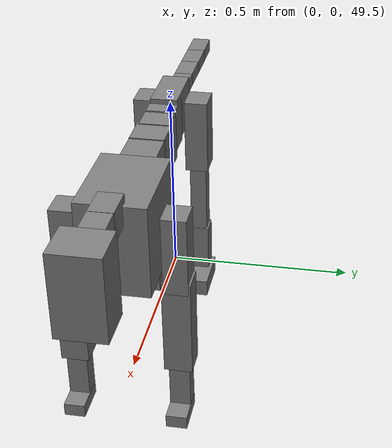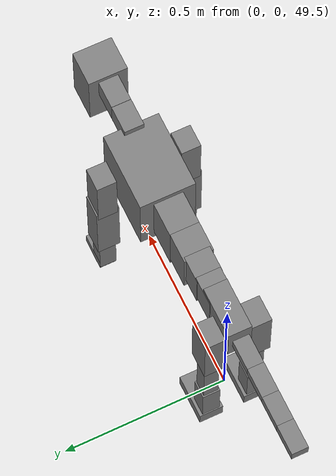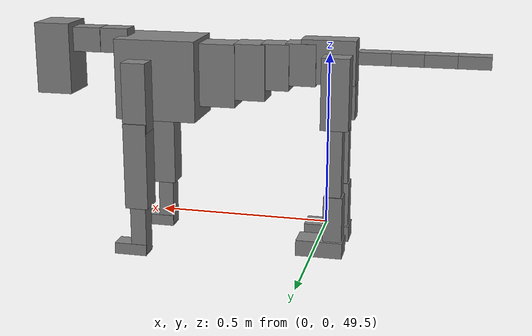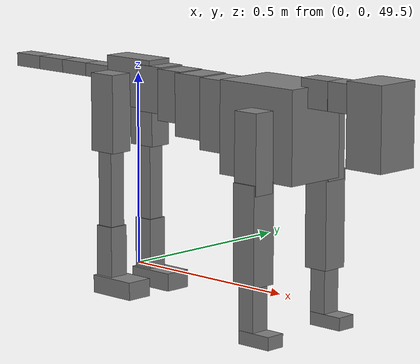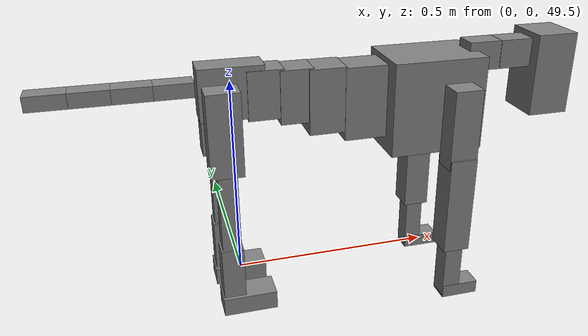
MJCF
<mujoco model="dog">

    <default>
        <joint armature="0.02" stiffness="1" damping="0.2" limited="true"/>
        <geom condim="3" friction="1 0.05 0.05" margin="0.01"/>
        <motor ctrllimited="true" ctrlrange="-1.0 1.0" forcelimited="true" gear="50"/>
    </default>

    <compiler inertiafromgeom="true" angle="radian"/>

    <option timestep="0.016" iterations="50" tolerance="1e-10" solver="Newton" jacobian="dense" cone="pyramidal"/>

    <size nconmax="20000" njmax="60000" nstack="5000000"/>
    <visual>
        <map force="0.1" zfar="30"/>
        <rgba haze="0.15 0.25 0.35 1"/>
        <quality shadowsize="2048"/>
        <global offwidth="800" offheight="800"/>
    </visual>

    <asset>
        <texture type="skybox" builtin="gradient" rgb1="0.3 0.5 0.7" rgb2="0 0 0" width="512" height="512"/>
        <texture name="texplane" type="2d" builtin="checker" rgb1=".2 .3 .4" rgb2=".1 0.15 0.2" width="512" height="512"
                 mark="cross" markrgb=".8 .8 .8"/>
        <texture name="texgeom" type="cube" builtin="flat" mark="cross" width="127" height="1278" rgb1="0.8 0.6 0.4"
                 rgb2="0.8 0.6 0.4" markrgb="1 1 1" random="0.01"/>

        <material name="matplane" reflectance="0.3" texture="texplane" texrepeat="1 1" texuniform="true"/>
        <material name="matgeom" texture="texgeom" texuniform="true" rgba="0.8 0.6 .4 1"/>
    </asset>

    <worldbody>
        <geom name="floor" pos="0 0 0" size="0 0 .25" type="plane" material="matplane" condim="3"/>

        <light directional="false" diffuse=".2 .2 .2" specular="0 0 0" pos="0 0 5" dir="0 0 -1" castshadow="false"/>
        <light mode="targetbodycom" target="torso" directional="false" diffuse=".8 .8 .8" specular="0.3 0.3 0.3"
               pos="0 0 4.0" dir="0 0 -1"/>

        <body name="root" pos="0 0 50">
            <freejoint name="root_1"/>
            <geom type="box" pos="0 0 -0.02" size="0.0774  0.0358  0.063" density="2030"/>

            <body name="spine1" pos="0.054 0 0">
                <joint name="spine1_y" axis="0 1 0" range="0 0.7" limited="true"/>
                <geom type="box" pos="0.02375 0 -0.03" size="0.04375  0.0375  0.05985" density="2030"/>

                <body name="spine2" pos="0.0612 0 0">
                    <joint name="spine2_y" axis="0 1 0" range="-0.15 0.15" limited="true"/>
                    <geom type="box" pos="0.03555  0  -0.04" size="0.04055  0.039  0.06615" density="2030"/>

                    <body name="spine3" pos="0.0730 0 0">
                        <joint name="spine3_y" axis="0 1 0" range="-0.15 0.15" limited="true"/>
                        <geom type="box" pos="0.03555  0  -0.057" size="0.04555  0.0445  0.081" density="2030"/>

                        <body name="spine4" pos="0.0780 0 0">
                            <joint name="spine4_y" axis="0 1 0" range="-0.15 0.15" limited="true"/>
                            <geom type="box" pos="0.05265  0  -0.07" size="0.05265  0.045  0.09135" density="2030"/>

                            <body name="torso" pos="0.1082 0 0">
                                <joint name="torso_y" axis="0 1 0" range="-0.15 0.15" limited="true"/>
                                <geom type="box" pos="0.11925  0  -0.085" size="0.11925  0.085  0.11745"
                                      density="2030"/>

                                <body name="neck1" pos="0.2160  0   0.0180">
                                    <joint name="neck1_y" axis="0 1 0" range="-1.2  -1" limited="true"/>
                                    <geom type="box" pos="0.0423  0  0" size="0.0423  0.03  0.036" density="2325"/>

                                    <body name="neck2" pos="0.0853  0  0">
                                        <joint name="neck2_y" axis="0 1 0" range="0.1  0" limited="true"/>
                                        <geom type="box" pos="0.0423  0  0" size="0.0423  0.03  0.036" density="2325"/>

                                        <body name="head" pos="0.0853  0  0">
                                            <joint name="head_y" axis="0 1 0" range="-0.3  -0.2" limited="true"/>
                                            <geom type="box" pos="0.0531  0  -0.055" size="0.0531  0.06  0.1044"
                                                  density="4030"/>

                                        </body>
                                    </body>
                                </body>

                                <body name="front_shoulder" pos="0.156  0   -0.0480">
                                    <joint name="front_shoulder_y" axis="0 1 0" range="-1 1.5" limited="true"/>
                                    <geom type="box" pos="0 0.13 -0.0739" size="0.0352  0.0301  0.1005" density="1158"/>
                                    <geom type="box" pos="0 -0.13 -0.0739" size="0.0352  0.0301  0.1005"
                                          density="1158"/>

                                    <body name="front_elbow" pos="0  0  -0.1478">
                                        <joint name="front_elbow_y" axis="0 1 0" range="-2 0" limited="true"/>
                                        <geom type="box" pos="0 0.13 -0.1259" size="0.0340  0.0348  0.1259"
                                              density="1081"/>
                                        <geom type="box" pos="0 -0.13 -0.1259" size="0.0340  0.0348  0.1259"
                                              density="1081"/>

                                        <body name="front_wrist" pos="0  0  -0.2518">
                                            <joint name="front_wrist_y" axis="0 1 0" range="-0.2 0" limited="true"/>
                                            <geom type="box" pos="0 0.13 -0.0643" size="0.0231  0.0257  0.0774"
                                                  density="1664"/>
                                            <geom type="box" pos="0 -0.13 -0.0643" size="0.0231  0.0257  0.0774"
                                                  density="1664"/>

                                            <body name="front_finger_end" pos="0  0  -0.1286">
                                                <joint name="front_finger_y" axis="0 1 0" range="-0.4 1"
                                                       limited="true"/>
                                                <geom type="box" pos="0.0263  0.13  -0.0018"
                                                      size="0.0483  0.0263  0.0168" density="1515"/>
                                                <geom type="box" pos="0.0263  -0.13  -0.0018"
                                                      size="0.0483  0.0263  0.0168" density="1515"/>

                                            </body>

                                        </body>
                                    </body>
                                </body>

                            </body>
                        </body>
                    </body>
                </body>
            </body>

            <body name="back_hip" pos="-0.03 0 -0.018">
                <joint name="back_hip_y" axis="0 1 0" range="-1.5 0.3" limited="true"/>
                <geom type="box" pos="0 0.07 -0.0788" size="0.0394  0.0309  0.1016" density="1154"/>
                <geom type="box" pos="0 -0.07 -0.0788" size="0.0394  0.0309  0.1016" density="1154"/>

                <body name="back_knee" pos="0  0  -0.1577">
                    <joint name="back_knee_y" axis="0 1 0" range="0 2.8" limited="true"/>
                    <geom type="box" pos="0 0.07 -0.1148" size="0.0228  0.0224  0.1303" density="1227"/>
                    <geom type="box" pos="0 -0.07 -0.1148" size="0.0228  0.0224  0.1303" density="1227"/>

                    <body name="back_ankle" pos="0  0  -0.2295">
                        <joint name="back_ankle_y" axis="0 1 0" range="-2.2 0" limited="true"/>
                        <geom type="box" pos="0 0.07 -0.0679" size="0.0270  0.0270  0.0792" density="1284"/>
                        <geom type="box" pos="0 -0.07 -0.0679" size="0.0270  0.0270  0.0792" density="1284"/>

                        <body name="back_toe_end" pos="0  0  -0.1358">
                            <joint name="back_toe_y" axis="0 1 0" range="-0.4 1" limited="true"/>
                            <geom type="box" pos="0.0364  0.07  -0.0083" size="0.0667  0.0364  0.0233" density="1515"/>
                            <geom type="box" pos="0.0364  -0.07  -0.0083" size="0.0667  0.0364  0.0233" density="1515"/>

                        </body>
                    </body>
                </body>
            </body>

            <body name="tail1" pos="-0.074 0 -0.006">
                <joint name="tail1_y" axis="0 1 0" range="-0.2 0.2" limited="true"/>
                <geom type="box" pos="-0.0536  0  0" size="0.045  0.025  0.0175" density="1587"/>

                <body name="tail2" pos="-0.09 0 0">
                    <joint name="tail2_y" axis="0 1 0" range="-0.2 0.2" limited="true"/>
                    <geom type="box" pos="-0.0536  0  0" size="0.045  0.025  0.0175" density="1587"/>

                    <body name="tail3" pos="-0.09 0 0">
                        <joint name="tail3_y" axis="0 1 0" range="-0.2 0.2" limited="true"/>
                        <geom type="box" pos="-0.0536  0  0" size="0.045  0.025  0.0175" density="1587"/>

                        <body name="tail4" pos="-0.09 0 0">
                            <joint name="tail4_y" axis="0 1 0" range="-0.2 0.2" limited="true"/>
                            <geom type="box" pos="-0.0536  0  0" size="0.045  0.025  0.0175" density="1587"/>

                        </body>
                    </body>
                </body>
            </body>
        </body>
    </worldbody>

    <actuator>
        <motor joint="spine1_y" forcerange="-150 150     "/>
        <motor joint="spine2_y" forcerange="-150 150     "/>
        <motor joint="spine3_y" forcerange="-150 150     "/>
        <motor joint="spine4_y" forcerange="-150 150     "/>
        <motor joint="torso_y" forcerange="-150 150     "/>
        <motor joint="neck1_y" forcerange="-100 100       "/>
        <motor joint="neck2_y" forcerange="-100 100       "/>
        <motor joint="head_y" forcerange="-150 150       "/>
        <motor joint="front_shoulder_y" forcerange="-129.98 170.86"/>
        <motor joint="front_elbow_y" forcerange="-199.76 153.39"/>
        <motor joint="front_wrist_y" forcerange="-90.79 114.54"/>
        <motor joint="front_finger_y" forcerange="-22.35 78.07"/>
        <motor joint="back_hip_y" forcerange="-397.90 213.78"/>
        <motor joint="back_knee_y" forcerange="-217.86 308.46"/>
        <motor joint="back_angle_y" forcerange="-228.81 102.62"/>
        <motor joint="back_toe_y" forcerange="-84.47 126.39"/>
        <motor joint="tail1_y" forcerange="-50 50     "/>
        <motor joint="tail2_y" forcerange="-50 50     "/>
        <motor joint="tail3_y" forcerange="-50 50     "/>
        <motor joint="tail4_y" forcerange="-50 50     "/>
    </actuator>
</mujoco>
